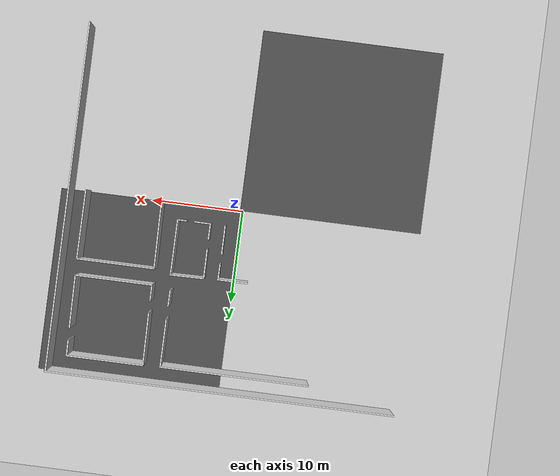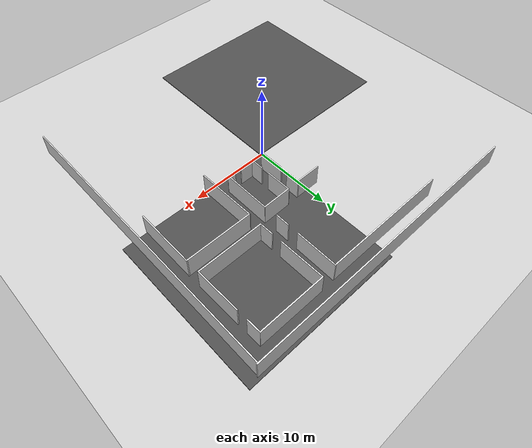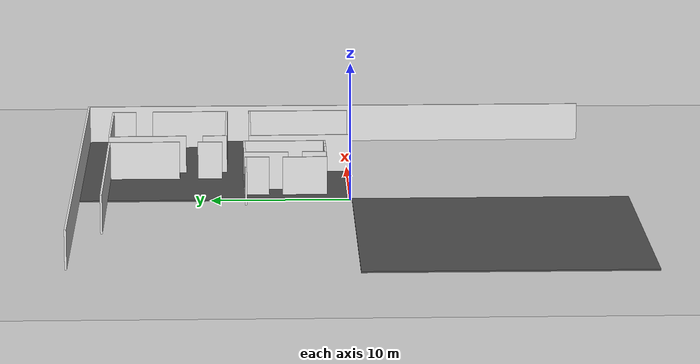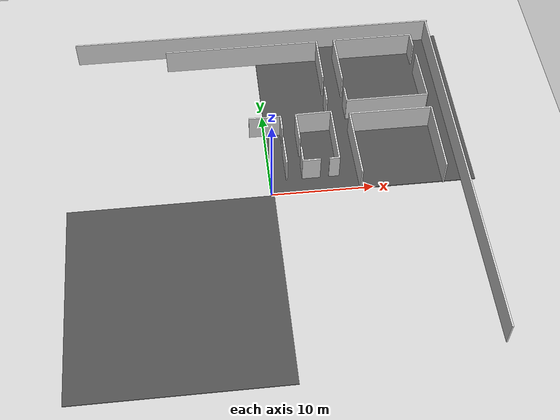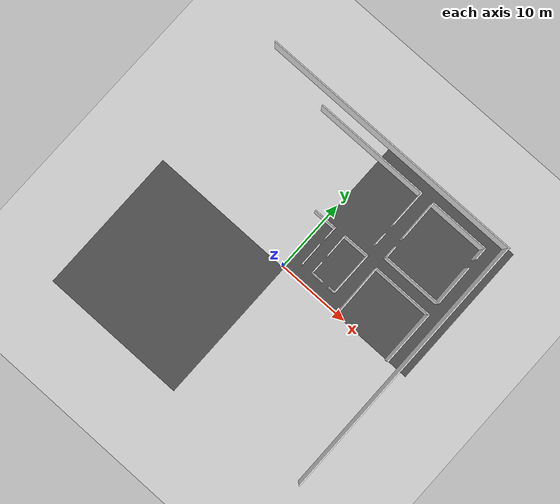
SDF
<sdf version="1.6">
 <world name="default">
  <model name="ground_plane">
   <static>1</static>
   <link name="link">
    <collision name="collision">
     <geometry><plane><normal>0 0 1</normal><size>100 100</size></plane></geometry>
     <surface><friction><ode><mu>100</mu><mu2>50</mu2></ode></friction></surface>
    </collision>
    <visual name="visual">
     <cast_shadows>0</cast_shadows>
     <geometry><plane><normal>0 0 1</normal><size>100 100</size></plane></geometry>
     <material>
      <script><uri>file://media/materials/scripts/gazebo.material</uri><name>Gazebo/Grey</name></script>
     </material>
    </visual>
    <velocity_decay><linear>0</linear><angular>0</angular></velocity_decay>
   </link>
  </model>
  <model name="asphalt_plane">
   <static>1</static>
   <link name="link">
    <collision name="collision"><geometry><box><size>20 20 0.1</size></box></geometry></collision>
    <visual name="visual">
     <cast_shadows>0</cast_shadows>
     <geometry><box><size>20 20 0.1</size></box></geometry>
     <material>
      <script>
       <uri>model://asphalt_plane/materials/scripts</uri>
       <uri>model://asphalt_plane/materials/textures</uri>
       <name>vrc/asphalt</name>
      </script>
     </material>
    </visual>
   </link>
   <pose>-9.73878 -10.1135 0 0 -0 0</pose>
  </model>
  <model name="asphalt_plane_2">
   <static>1</static>
   <link name="link">
    <collision name="collision"><geometry><box><size>20 20 0.1</size></box></geometry></collision>
    <visual name="visual">
     <cast_shadows>0</cast_shadows>
     <geometry><box><size>20 20 0.1</size></box></geometry>
     <material>
      <script>
       <uri>model://asphalt_plane/materials/scripts</uri>
       <uri>model://asphalt_plane/materials/textures</uri>
       <name>vrc/asphalt</name>
      </script>
     </material>
    </visual>
   </link>
   <pose>10.0797 9.93952 0 0 -0 0</pose>
  </model>
  <model name="white_wall_outside">
   <link name="link">
    <inertial>
     <mass>1</mass>
     <inertia>
      <ixx>0.166667</ixx>
      <ixy>0</ixy>
      <ixz>0</ixz>
      <iyy>0.166667</iyy>
      <iyz>0</iyz>
      <izz>0.166667</izz>
     </inertia>
    </inertial>
    <visual name="visual">
     <geometry><box><size>37.6355 0.139088 2.78993</size></box></geometry>
     <material>
      <script><name>Gazebo/White</name><uri>file://media/materials/scripts/gazebo.material</uri></script>
      <shader type="vertex"><normal_map>__default__</normal_map></shader>
      <ambient>1 1 1 1</ambient>
      <diffuse>1 1 1 1</diffuse>
      <specular>0 0 0 1</specular>
      <emissive>0 0 0 1</emissive>
     </material>
    </visual>
    <collision name="collision">
     <geometry><box><size>37.6355 0.139088 2.78993</size></box></geometry>
     <surface>
      <friction>
       <ode><mu>1</mu><mu2>1</mu2><fdir1>0 0 0</fdir1><slip1>0</slip1><slip2>0</slip2></ode>
       <torsional>
        <coefficient>1</coefficient>
        <patch_radius>0</patch_radius>
        <surface_radius>0</surface_radius>
        <use_patch_radius>1</use_patch_radius>
        <ode><slip>0</slip></ode>
       </torsional>
      </friction>
      <bounce><restitution_coefficient>0</restitution_coefficient><threshold>1e+06</threshold></bounce>
      <contact>
       <collide_without_contact>0</collide_without_contact>
       <collide_without_contact_bitmask>1</collide_without_contact_bitmask>
       <collide_bitmask>1</collide_bitmask>
       <ode>
        <soft_cfm>0</soft_cfm>
        <soft_erp>0.2</soft_erp>
        <kp>1e+13</kp>
        <kd>1</kd>
        <max_vel>0.01</max_vel>
        <min_depth>0</min_depth>
       </ode>
       <bullet>
        <split_impulse>1</split_impulse>
        <split_impulse_penetration_threshold>-0.01</split_impulse_penetration_threshold>
        <soft_cfm>0</soft_cfm>
        <soft_erp>0.2</soft_erp>
        <kp>1e+13</kp>
        <kd>1</kd>
       </bullet>
      </contact>
     </surface>
    </collision>
   </link>
   <static>1</static>
   <pose>0.019671 19.5408 1.44001 -1e-06 4e-06 -1.6e-05</pose>
  </model>
  <model name="white_wall_outside_clone_0">
   <link name="link">
    <inertial>
     <mass>1</mass>
     <inertia>
      <ixx>0.166667</ixx>
      <ixy>0</ixy>
      <ixz>0</ixz>
      <iyy>0.166667</iyy>
      <iyz>0</iyz>
      <izz>0.166667</izz>
     </inertia>
    </inertial>
    <visual name="visual">
     <geometry><box><size>37.6355 0.139088 2.78993</size></box></geometry>
     <material>
      <script><name>Gazebo/White</name><uri>file://media/materials/scripts/gazebo.material</uri></script>
      <shader type="vertex"><normal_map>__default__</normal_map></shader>
      <ambient>1 1 1 1</ambient>
      <diffuse>1 1 1 1</diffuse>
      <specular>0 0 0 1</specular>
      <emissive>0 0 0 1</emissive>
     </material>
    </visual>
    <collision name="collision">
     <geometry><box><size>37.6355 0.139088 2.78993</size></box></geometry>
     <surface>
      <friction>
       <ode><mu>1</mu><mu2>1</mu2><fdir1>0 0 0</fdir1><slip1>0</slip1><slip2>0</slip2></ode>
       <torsional>
        <coefficient>1</coefficient>
        <patch_radius>0</patch_radius>
        <surface_radius>0</surface_radius>
        <use_patch_radius>1</use_patch_radius>
        <ode><slip>0</slip></ode>
       </torsional>
      </friction>
      <bounce><restitution_coefficient>0</restitution_coefficient><threshold>1e+06</threshold></bounce>
      <contact>
       <collide_without_contact>0</collide_without_contact>
       <collide_without_contact_bitmask>1</collide_without_contact_bitmask>
       <collide_bitmask>1</collide_bitmask>
       <ode>
        <soft_cfm>0</soft_cfm>
        <soft_erp>0.2</soft_erp>
        <kp>1e+13</kp>
        <kd>1</kd>
        <max_vel>0.01</max_vel>
        <min_depth>0</min_depth>
       </ode>
       <bullet>
        <split_impulse>1</split_impulse>
        <split_impulse_penetration_threshold>-0.01</split_impulse_penetration_threshold>
        <soft_cfm>0</soft_cfm>
        <soft_erp>0.2</soft_erp>
        <kp>1e+13</kp>
        <kd>1</kd>
       </bullet>
      </contact>
     </surface>
    </collision>
   </link>
   <static>1</static>
   <pose>18.7064 0.787366 1.43994 4e-06 1e-06 1.57249</pose>
  </model>
  <model name="white_wall1_clone">
   <link name="link">
    <inertial>
     <mass>1</mass>
     <inertia>
      <ixx>0.166667</ixx>
      <ixy>0</ixy>
      <ixz>0</ixz>
      <iyy>0.166667</iyy>
      <iyz>0</iyz>
      <izz>0.166667</izz>
     </inertia>
    </inertial>
    <visual name="visual">
     <geometry><box><size>7.516 0.139088 2.78993</size></box></geometry>
     <material>
      <script><name>Gazebo/White</name><uri>file://media/materials/scripts/gazebo.material</uri></script>
      <shader type="vertex"><normal_map>__default__</normal_map></shader>
      <ambient>1 1 1 1</ambient>
      <diffuse>1 1 1 1</diffuse>
      <specular>0 0 0 1</specular>
      <emissive>0 0 0 1</emissive>
     </material>
    </visual>
    <collision name="collision">
     <geometry><box><size>7.516 0.139088 2.78993</size></box></geometry>
     <surface>
      <friction>
       <ode><mu>1</mu><mu2>1</mu2><fdir1>0 0 0</fdir1><slip1>0</slip1><slip2>0</slip2></ode>
       <torsional>
        <coefficient>1</coefficient>
        <patch_radius>0</patch_radius>
        <surface_radius>0</surface_radius>
        <use_patch_radius>1</use_patch_radius>
        <ode><slip>0</slip></ode>
       </torsional>
      </friction>
      <bounce><restitution_coefficient>0</restitution_coefficient><threshold>1e+06</threshold></bounce>
      <contact>
       <collide_without_contact>0</collide_without_contact>
       <collide_without_contact_bitmask>1</collide_without_contact_bitmask>
       <collide_bitmask>1</collide_bitmask>
       <ode>
        <soft_cfm>0</soft_cfm>
        <soft_erp>0.2</soft_erp>
        <kp>1e+13</kp>
        <kd>1</kd>
        <max_vel>0.01</max_vel>
        <min_depth>0</min_depth>
       </ode>
       <bullet>
        <split_impulse>1</split_impulse>
        <split_impulse_penetration_threshold>-0.01</split_impulse_penetration_threshold>
        <soft_cfm>0</soft_cfm>
        <soft_erp>0.2</soft_erp>
        <kp>1e+13</kp>
        <kd>1</kd>
       </bullet>
      </contact>
     </surface>
    </collision>
   </link>
   <static>1</static>
   <pose>16.8632 3.54144 1.43994 -4e-06 -1e-06 -1.57184</pose>
  </model>
  <model name="white_wall8_clone_clone">
   <link name="link">
    <inertial>
     <mass>1</mass>
     <inertia>
      <ixx>0.166667</ixx>
      <ixy>0</ixy>
      <ixz>0</ixz>
      <iyy>0.166667</iyy>
      <iyz>0</iyz>
      <izz>0.166667</izz>
     </inertia>
    </inertial>
    <visual name="visual">
     <geometry><box><size>8.30741 0.139088 2.78993</size></box></geometry>
     <material>
      <script><name>Gazebo/White</name><uri>file://media/materials/scripts/gazebo.material</uri></script>
      <shader type="vertex"><normal_map>__default__</normal_map></shader>
      <ambient>1 1 1 1</ambient>
      <diffuse>1 1 1 1</diffuse>
      <specular>0 0 0 1</specular>
      <emissive>0 0 0 1</emissive>
     </material>
    </visual>
    <collision name="collision">
     <geometry><box><size>8.30741 0.139088 2.78993</size></box></geometry>
     <surface>
      <friction>
       <ode><mu>1</mu><mu2>1</mu2><fdir1>0 0 0</fdir1><slip1>0</slip1><slip2>0</slip2></ode>
       <torsional>
        <coefficient>1</coefficient>
        <patch_radius>0</patch_radius>
        <surface_radius>0</surface_radius>
        <use_patch_radius>1</use_patch_radius>
        <ode><slip>0</slip></ode>
       </torsional>
      </friction>
      <bounce><restitution_coefficient>0</restitution_coefficient><threshold>1e+06</threshold></bounce>
      <contact>
       <collide_without_contact>0</collide_without_contact>
       <collide_without_contact_bitmask>1</collide_without_contact_bitmask>
       <collide_bitmask>1</collide_bitmask>
       <ode>
        <soft_cfm>0</soft_cfm>
        <soft_erp>0.2</soft_erp>
        <kp>1e+13</kp>
        <kd>1</kd>
        <max_vel>0.01</max_vel>
        <min_depth>0</min_depth>
       </ode>
       <bullet>
        <split_impulse>1</split_impulse>
        <split_impulse_penetration_threshold>-0.01</split_impulse_penetration_threshold>
        <soft_cfm>0</soft_cfm>
        <soft_erp>0.2</soft_erp>
        <kp>1e+13</kp>
        <kd>1</kd>
       </bullet>
      </contact>
     </surface>
    </collision>
   </link>
   <static>1</static>
   <pose>12.7274 7.22395 1.43997 -1e-06 4e-06 -1.6e-05</pose>
  </model>
  <model name="white_wall1_clone_clone">
   <link name="link">
    <inertial>
     <mass>1</mass>
     <inertia>
      <ixx>0.166667</ixx>
      <ixy>0</ixy>
      <ixz>0</ixz>
      <iyy>0.166667</iyy>
      <iyz>0</iyz>
      <izz>0.166667</izz>
     </inertia>
    </inertial>
    <visual name="visual">
     <geometry><box><size>7.516 0.139088 2.78993</size></box></geometry>
     <material>
      <script><name>Gazebo/White</name><uri>file://media/materials/scripts/gazebo.material</uri></script>
      <shader type="vertex"><normal_map>__default__</normal_map></shader>
      <ambient>1 1 1 1</ambient>
      <diffuse>1 1 1 1</diffuse>
      <specular>0 0 0 1</specular>
      <emissive>0 0 0 1</emissive>
     </material>
    </visual>
    <collision name="collision">
     <geometry><box><size>7.516 0.139088 2.78993</size></box></geometry>
     <surface>
      <friction>
       <ode><mu>1</mu><mu2>1</mu2><fdir1>0 0 0</fdir1><slip1>0</slip1><slip2>0</slip2></ode>
       <torsional>
        <coefficient>1</coefficient>
        <patch_radius>0</patch_radius>
        <surface_radius>0</surface_radius>
        <use_patch_radius>1</use_patch_radius>
        <ode><slip>0</slip></ode>
       </torsional>
      </friction>
      <bounce><restitution_coefficient>0</restitution_coefficient><threshold>1e+06</threshold></bounce>
      <contact>
       <collide_without_contact>0</collide_without_contact>
       <collide_without_contact_bitmask>1</collide_without_contact_bitmask>
       <collide_bitmask>1</collide_bitmask>
       <ode>
        <soft_cfm>0</soft_cfm>
        <soft_erp>0.2</soft_erp>
        <kp>1e+13</kp>
        <kd>1</kd>
        <max_vel>0.01</max_vel>
        <min_depth>0</min_depth>
       </ode>
       <bullet>
        <split_impulse>1</split_impulse>
        <split_impulse_penetration_threshold>-0.01</split_impulse_penetration_threshold>
        <soft_cfm>0</soft_cfm>
        <soft_erp>0.2</soft_erp>
        <kp>1e+13</kp>
        <kd>1</kd>
       </bullet>
      </contact>
     </surface>
    </collision>
   </link>
   <static>1</static>
   <pose>8.6384 3.53143 1.43994 -4e-06 -1e-06 -1.55395</pose>
  </model>
  <model name="white_wall3_clone_clone_1_clone_0_clone">
   <link name="link">
    <inertial>
     <mass>1</mass>
     <inertia>
      <ixx>0.166667</ixx>
      <ixy>0</ixy>
      <ixz>0</ixz>
      <iyy>0.166667</iyy>
      <iyz>0</iyz>
      <izz>0.166667</izz>
     </inertia>
    </inertial>
    <visual name="visual">
     <geometry><box><size>1.77743 0.139088 2.78993</size></box></geometry>
     <material>
      <script><name>Gazebo/White</name><uri>file://media/materials/scripts/gazebo.material</uri></script>
      <shader type="vertex"><normal_map>__default__</normal_map></shader>
      <ambient>1 1 1 1</ambient>
      <diffuse>1 1 1 1</diffuse>
      <specular>0 0 0 1</specular>
      <emissive>0 0 0 1</emissive>
     </material>
    </visual>
    <collision name="collision">
     <geometry><box><size>1.77743 0.139088 2.78993</size></box></geometry>
     <surface>
      <friction>
       <ode><mu>1</mu><mu2>1</mu2><fdir1>0 0 0</fdir1><slip1>0</slip1><slip2>0</slip2></ode>
       <torsional>
        <coefficient>1</coefficient>
        <patch_radius>0</patch_radius>
        <surface_radius>0</surface_radius>
        <use_patch_radius>1</use_patch_radius>
        <ode><slip>0</slip></ode>
       </torsional>
      </friction>
      <bounce><restitution_coefficient>0</restitution_coefficient><threshold>1e+06</threshold></bounce>
      <contact>
       <collide_without_contact>0</collide_without_contact>
       <collide_without_contact_bitmask>1</collide_without_contact_bitmask>
       <collide_bitmask>1</collide_bitmask>
       <ode>
        <soft_cfm>0</soft_cfm>
        <soft_erp>0.2</soft_erp>
        <kp>1e+13</kp>
        <kd>1</kd>
        <max_vel>0.01</max_vel>
        <min_depth>0</min_depth>
       </ode>
       <bullet>
        <split_impulse>1</split_impulse>
        <split_impulse_penetration_threshold>-0.01</split_impulse_penetration_threshold>
        <soft_cfm>0</soft_cfm>
        <soft_erp>0.2</soft_erp>
        <kp>1e+13</kp>
        <kd>1</kd>
       </bullet>
      </contact>
     </surface>
    </collision>
   </link>
   <static>1</static>
   <pose>16.6488 16.7754 1.43995 -4e-06 -1e-06 -1.5551</pose>
  </model>
  <model name="white_wall14">
   <link name="link">
    <inertial>
     <mass>1</mass>
     <inertia>
      <ixx>0.166667</ixx>
      <ixy>0</ixy>
      <ixz>0</ixz>
      <iyy>0.166667</iyy>
      <iyz>0</iyz>
      <izz>0.166667</izz>
     </inertia>
    </inertial>
    <visual name="visual">
     <geometry><box><size>5.71848 0.139088 2.78993</size></box></geometry>
     <material>
      <script><name>Gazebo/White</name><uri>file://media/materials/scripts/gazebo.material</uri></script>
      <shader type="vertex"><normal_map>__default__</normal_map></shader>
      <ambient>1 1 1 1</ambient>
      <diffuse>1 1 1 1</diffuse>
      <specular>0 0 0 1</specular>
      <emissive>0 0 0 1</emissive>
     </material>
    </visual>
    <collision name="collision">
     <geometry><box><size>5.71848 0.139088 2.78993</size></box></geometry>
     <surface>
      <friction>
       <ode><mu>1</mu><mu2>1</mu2><fdir1>0 0 0</fdir1><slip1>0</slip1><slip2>0</slip2></ode>
       <torsional>
        <coefficient>1</coefficient>
        <patch_radius>0</patch_radius>
        <surface_radius>0</surface_radius>
        <use_patch_radius>1</use_patch_radius>
        <ode><slip>0</slip></ode>
       </torsional>
      </friction>
      <bounce><restitution_coefficient>0</restitution_coefficient><threshold>1e+06</threshold></bounce>
      <contact>
       <collide_without_contact>0</collide_without_contact>
       <collide_without_contact_bitmask>1</collide_without_contact_bitmask>
       <collide_bitmask>1</collide_bitmask>
       <ode>
        <soft_cfm>0</soft_cfm>
        <soft_erp>0.2</soft_erp>
        <kp>1e+13</kp>
        <kd>1</kd>
        <max_vel>0.01</max_vel>
        <min_depth>0</min_depth>
       </ode>
       <bullet>
        <split_impulse>1</split_impulse>
        <split_impulse_penetration_threshold>-0.01</split_impulse_penetration_threshold>
        <soft_cfm>0</soft_cfm>
        <soft_erp>0.2</soft_erp>
        <kp>1e+13</kp>
        <kd>1</kd>
       </bullet>
      </contact>
     </surface>
    </collision>
   </link>
   <static>1</static>
   <pose>16.7586 11.7645 1.43994 -4e-06 -1e-06 -1.55521</pose>
  </model>
  <model name="white_wall8_clone_clone_clone">
   <link name="link">
    <inertial>
     <mass>1</mass>
     <inertia>
      <ixx>0.166667</ixx>
      <ixy>0</ixy>
      <ixz>0</ixz>
      <iyy>0.166667</iyy>
      <iyz>0</iyz>
      <izz>0.166667</izz>
     </inertia>
    </inertial>
    <visual name="visual">
     <geometry><box><size>8.30741 0.139088 2.78993</size></box></geometry>
     <material>
      <script><name>Gazebo/White</name><uri>file://media/materials/scripts/gazebo.material</uri></script>
      <shader type="vertex"><normal_map>__default__</normal_map></shader>
      <ambient>1 1 1 1</ambient>
      <diffuse>1 1 1 1</diffuse>
      <specular>0 0 0 1</specular>
      <emissive>0 0 0 1</emissive>
     </material>
    </visual>
    <collision name="collision">
     <geometry><box><size>8.30741 0.139088 2.78993</size></box></geometry>
     <surface>
      <friction>
       <ode><mu>1</mu><mu2>1</mu2><fdir1>0 0 0</fdir1><slip1>0</slip1><slip2>0</slip2></ode>
       <torsional>
        <coefficient>1</coefficient>
        <patch_radius>0</patch_radius>
        <surface_radius>0</surface_radius>
        <use_patch_radius>1</use_patch_radius>
        <ode><slip>0</slip></ode>
       </torsional>
      </friction>
      <bounce><restitution_coefficient>0</restitution_coefficient><threshold>1e+06</threshold></bounce>
      <contact>
       <collide_without_contact>0</collide_without_contact>
       <collide_without_contact_bitmask>1</collide_without_contact_bitmask>
       <collide_bitmask>1</collide_bitmask>
       <ode>
        <soft_cfm>0</soft_cfm>
        <soft_erp>0.2</soft_erp>
        <kp>1e+13</kp>
        <kd>1</kd>
        <max_vel>0.01</max_vel>
        <min_depth>0</min_depth>
       </ode>
       <bullet>
        <split_impulse>1</split_impulse>
        <split_impulse_penetration_threshold>-0.01</split_impulse_penetration_threshold>
        <soft_cfm>0</soft_cfm>
        <soft_erp>0.2</soft_erp>
        <kp>1e+13</kp>
        <kd>1</kd>
       </bullet>
      </contact>
     </surface>
    </collision>
   </link>
   <static>1</static>
   <pose>12.6764 8.97226 1.43997 -1e-06 4e-06 -1.6e-05</pose>
  </model>
  <model name="white_wall8_clone_clone_clone_0">
   <link name="link">
    <inertial>
     <mass>1</mass>
     <inertia>
      <ixx>0.166667</ixx>
      <ixy>0</ixy>
      <ixz>0</ixz>
      <iyy>0.166667</iyy>
      <iyz>0</iyz>
      <izz>0.166667</izz>
     </inertia>
    </inertial>
    <visual name="visual">
     <geometry><box><size>8.30741 0.139088 2.78993</size></box></geometry>
     <material>
      <script><name>Gazebo/White</name><uri>file://media/materials/scripts/gazebo.material</uri></script>
      <shader type="vertex"><normal_map>__default__</normal_map></shader>
      <ambient>1 1 1 1</ambient>
      <diffuse>1 1 1 1</diffuse>
      <specular>0 0 0 1</specular>
      <emissive>0 0 0 1</emissive>
     </material>
    </visual>
    <collision name="collision">
     <geometry><box><size>8.30741 0.139088 2.78993</size></box></geometry>
     <surface>
      <friction>
       <ode><mu>1</mu><mu2>1</mu2><fdir1>0 0 0</fdir1><slip1>0</slip1><slip2>0</slip2></ode>
       <torsional>
        <coefficient>1</coefficient>
        <patch_radius>0</patch_radius>
        <surface_radius>0</surface_radius>
        <use_patch_radius>1</use_patch_radius>
        <ode><slip>0</slip></ode>
       </torsional>
      </friction>
      <bounce><restitution_coefficient>0</restitution_coefficient><threshold>1e+06</threshold></bounce>
      <contact>
       <collide_without_contact>0</collide_without_contact>
       <collide_without_contact_bitmask>1</collide_without_contact_bitmask>
       <collide_bitmask>1</collide_bitmask>
       <ode>
        <soft_cfm>0</soft_cfm>
        <soft_erp>0.2</soft_erp>
        <kp>1e+13</kp>
        <kd>1</kd>
        <max_vel>0.01</max_vel>
        <min_depth>0</min_depth>
       </ode>
       <bullet>
        <split_impulse>1</split_impulse>
        <split_impulse_penetration_threshold>-0.01</split_impulse_penetration_threshold>
        <soft_cfm>0</soft_cfm>
        <soft_erp>0.2</soft_erp>
        <kp>1e+13</kp>
        <kd>1</kd>
       </bullet>
      </contact>
     </surface>
    </collision>
   </link>
   <static>1</static>
   <pose>12.5374 17.6 1.43997 -1e-06 4e-06 -1.6e-05</pose>
  </model>
  <model name="white_wall14_clone">
   <link name="link">
    <inertial>
     <mass>1</mass>
     <inertia>
      <ixx>0.166667</ixx>
      <ixy>0</ixy>
      <ixz>0</ixz>
      <iyy>0.166667</iyy>
      <iyz>0</iyz>
      <izz>0.166667</izz>
     </inertia>
    </inertial>
    <visual name="visual">
     <geometry><box><size>5.71848 0.139088 2.78993</size></box></geometry>
     <material>
      <script><name>Gazebo/White</name><uri>file://media/materials/scripts/gazebo.material</uri></script>
      <shader type="vertex"><normal_map>__default__</normal_map></shader>
      <ambient>1 1 1 1</ambient>
      <diffuse>1 1 1 1</diffuse>
      <specular>0 0 0 1</specular>
      <emissive>0 0 0 1</emissive>
     </material>
    </visual>
    <collision name="collision">
     <geometry><box><size>5.71848 0.139088 2.78993</size></box></geometry>
     <surface>
      <friction>
       <ode><mu>1</mu><mu2>1</mu2><fdir1>0 0 0</fdir1><slip1>0</slip1><slip2>0</slip2></ode>
       <torsional>
        <coefficient>1</coefficient>
        <patch_radius>0</patch_radius>
        <surface_radius>0</surface_radius>
        <use_patch_radius>1</use_patch_radius>
        <ode><slip>0</slip></ode>
       </torsional>
      </friction>
      <bounce><restitution_coefficient>0</restitution_coefficient><threshold>1e+06</threshold></bounce>
      <contact>
       <collide_without_contact>0</collide_without_contact>
       <collide_without_contact_bitmask>1</collide_without_contact_bitmask>
       <collide_bitmask>1</collide_bitmask>
       <ode>
        <soft_cfm>0</soft_cfm>
        <soft_erp>0.2</soft_erp>
        <kp>1e+13</kp>
        <kd>1</kd>
        <max_vel>0.01</max_vel>
        <min_depth>0</min_depth>
       </ode>
       <bullet>
        <split_impulse>1</split_impulse>
        <split_impulse_penetration_threshold>-0.01</split_impulse_penetration_threshold>
        <soft_cfm>0</soft_cfm>
        <soft_erp>0.2</soft_erp>
        <kp>1e+13</kp>
        <kd>1</kd>
       </bullet>
      </contact>
     </surface>
    </collision>
   </link>
   <static>1</static>
   <pose>8.48733 14.7914 1.43994 -4e-06 -1e-06 -1.55521</pose>
  </model>
  <model name="white_wall3_clone_clone_1_clone_0_clone_clone">
   <link name="link">
    <inertial>
     <mass>1</mass>
     <inertia>
      <ixx>0.166667</ixx>
      <ixy>0</ixy>
      <ixz>0</ixz>
      <iyy>0.166667</iyy>
      <iyz>0</iyz>
      <izz>0.166667</izz>
     </inertia>
    </inertial>
    <visual name="visual">
     <geometry><box><size>1.77743 0.139088 2.78993</size></box></geometry>
     <material>
      <script><name>Gazebo/White</name><uri>file://media/materials/scripts/gazebo.material</uri></script>
      <shader type="vertex"><normal_map>__default__</normal_map></shader>
      <ambient>1 1 1 1</ambient>
      <diffuse>1 1 1 1</diffuse>
      <specular>0 0 0 1</specular>
      <emissive>0 0 0 1</emissive>
     </material>
    </visual>
    <collision name="collision">
     <geometry><box><size>1.77743 0.139088 2.78993</size></box></geometry>
     <surface>
      <friction>
       <ode><mu>1</mu><mu2>1</mu2><fdir1>0 0 0</fdir1><slip1>0</slip1><slip2>0</slip2></ode>
       <torsional>
        <coefficient>1</coefficient>
        <patch_radius>0</patch_radius>
        <surface_radius>0</surface_radius>
        <use_patch_radius>1</use_patch_radius>
        <ode><slip>0</slip></ode>
       </torsional>
      </friction>
      <bounce><restitution_coefficient>0</restitution_coefficient><threshold>1e+06</threshold></bounce>
      <contact>
       <collide_without_contact>0</collide_without_contact>
       <collide_without_contact_bitmask>1</collide_without_contact_bitmask>
       <collide_bitmask>1</collide_bitmask>
       <ode>
        <soft_cfm>0</soft_cfm>
        <soft_erp>0.2</soft_erp>
        <kp>1e+13</kp>
        <kd>1</kd>
        <max_vel>0.01</max_vel>
        <min_depth>0</min_depth>
       </ode>
       <bullet>
        <split_impulse>1</split_impulse>
        <split_impulse_penetration_threshold>-0.01</split_impulse_penetration_threshold>
        <soft_cfm>0</soft_cfm>
        <soft_erp>0.2</soft_erp>
        <kp>1e+13</kp>
        <kd>1</kd>
       </bullet>
      </contact>
     </surface>
    </collision>
   </link>
   <static>1</static>
   <pose>8.5689 9.81142 1.43995 -4e-06 -1e-06 -1.5551</pose>
  </model>
  <model name="white_wall17_clone_clone">
   <link name="link">
    <inertial>
     <mass>1</mass>
     <inertia>
      <ixx>0.166667</ixx>
      <ixy>0</ixy>
      <ixz>0</ixz>
      <iyy>0.166667</iyy>
      <iyz>0</iyz>
      <izz>0.166667</izz>
     </inertia>
    </inertial>
    <visual name="visual">
     <geometry><box><size>16.0161 0.139088 2.78993</size></box></geometry>
     <material>
      <script><name>Gazebo/White</name><uri>file://media/materials/scripts/gazebo.material</uri></script>
      <shader type="vertex"><normal_map>__default__</normal_map></shader>
      <ambient>1 1 1 1</ambient>
      <diffuse>1 1 1 1</diffuse>
      <specular>0 0 0 1</specular>
      <emissive>0 0 0 1</emissive>
     </material>
    </visual>
    <collision name="collision">
     <geometry><box><size>16.0161 0.139088 2.78993</size></box></geometry>
     <surface>
      <friction>
       <ode><mu>1</mu><mu2>1</mu2><fdir1>0 0 0</fdir1><slip1>0</slip1><slip2>0</slip2></ode>
       <torsional>
        <coefficient>1</coefficient>
        <patch_radius>0</patch_radius>
        <surface_radius>0</surface_radius>
        <use_patch_radius>1</use_patch_radius>
        <ode><slip>0</slip></ode>
       </torsional>
      </friction>
      <bounce><restitution_coefficient>0</restitution_coefficient><threshold>1e+06</threshold></bounce>
      <contact>
       <collide_without_contact>0</collide_without_contact>
       <collide_without_contact_bitmask>1</collide_without_contact_bitmask>
       <collide_bitmask>1</collide_bitmask>
       <ode>
        <soft_cfm>0</soft_cfm>
        <soft_erp>0.2</soft_erp>
        <kp>1e+13</kp>
        <kd>1</kd>
        <max_vel>0.01</max_vel>
        <min_depth>0</min_depth>
       </ode>
       <bullet>
        <split_impulse>1</split_impulse>
        <split_impulse_penetration_threshold>-0.01</split_impulse_penetration_threshold>
        <soft_cfm>0</soft_cfm>
        <soft_erp>0.2</soft_erp>
        <kp>1e+13</kp>
        <kd>1</kd>
       </bullet>
      </contact>
     </surface>
    </collision>
   </link>
   <static>1</static>
   <pose>-1.34784 17.535 1.43995 -1e-06 4e-06 -1.6e-05</pose>
  </model>
  <model name="white_wall19_clone_0">
   <link name="link">
    <inertial>
     <mass>1</mass>
     <inertia>
      <ixx>0.166667</ixx>
      <ixy>0</ixy>
      <ixz>0</ixz>
      <iyy>0.166667</iyy>
      <iyz>0</iyz>
      <izz>0.166667</izz>
     </inertia>
    </inertial>
    <visual name="visual">
     <geometry><box><size>5.22248 0.139088 2.78993</size></box></geometry>
     <material>
      <script><name>Gazebo/White</name><uri>file://media/materials/scripts/gazebo.material</uri></script>
      <shader type="vertex"><normal_map>__default__</normal_map></shader>
      <ambient>1 1 1 1</ambient>
      <diffuse>1 1 1 1</diffuse>
      <specular>0 0 0 1</specular>
      <emissive>0 0 0 1</emissive>
     </material>
    </visual>
    <collision name="collision">
     <geometry><box><size>5.22248 0.139088 2.78993</size></box></geometry>
     <surface>
      <friction>
       <ode><mu>1</mu><mu2>1</mu2><fdir1>0 0 0</fdir1><slip1>0</slip1><slip2>0</slip2></ode>
       <torsional>
        <coefficient>1</coefficient>
        <patch_radius>0</patch_radius>
        <surface_radius>0</surface_radius>
        <use_patch_radius>1</use_patch_radius>
        <ode><slip>0</slip></ode>
       </torsional>
      </friction>
      <bounce><restitution_coefficient>0</restitution_coefficient><threshold>1e+06</threshold></bounce>
      <contact>
       <collide_without_contact>0</collide_without_contact>
       <collide_without_contact_bitmask>1</collide_without_contact_bitmask>
       <collide_bitmask>1</collide_bitmask>
       <ode>
        <soft_cfm>0</soft_cfm>
        <soft_erp>0.2</soft_erp>
        <kp>1e+13</kp>
        <kd>1</kd>
        <max_vel>0.01</max_vel>
        <min_depth>0</min_depth>
       </ode>
       <bullet>
        <split_impulse>1</split_impulse>
        <split_impulse_penetration_threshold>-0.01</split_impulse_penetration_threshold>
        <soft_cfm>0</soft_cfm>
        <soft_erp>0.2</soft_erp>
        <kp>1e+13</kp>
        <kd>1</kd>
       </bullet>
      </contact>
     </surface>
    </collision>
   </link>
   <static>1</static>
   <pose>6.59059 14.9958 1.43998 4e-06 1e-06 1.56978</pose>
  </model>
  <model name="white_wall3_clone_clone_2_clone_clone">
   <link name="link">
    <inertial>
     <mass>1</mass>
     <inertia>
      <ixx>0.166667</ixx>
      <ixy>0</ixy>
      <ixz>0</ixz>
      <iyy>0.166667</iyy>
      <iyz>0</iyz>
      <izz>0.166667</izz>
     </inertia>
    </inertial>
    <visual name="visual">
     <geometry><box><size>1.77743 0.139088 2.78993</size></box></geometry>
     <material>
      <script><name>Gazebo/White</name><uri>file://media/materials/scripts/gazebo.material</uri></script>
      <shader type="vertex"><normal_map>__default__</normal_map></shader>
      <ambient>1 1 1 1</ambient>
      <diffuse>1 1 1 1</diffuse>
      <specular>0 0 0 1</specular>
      <emissive>0 0 0 1</emissive>
     </material>
    </visual>
    <collision name="collision">
     <geometry><box><size>1.77743 0.139088 2.78993</size></box></geometry>
     <surface>
      <friction>
       <ode><mu>1</mu><mu2>1</mu2><fdir1>0 0 0</fdir1><slip1>0</slip1><slip2>0</slip2></ode>
       <torsional>
        <coefficient>1</coefficient>
        <patch_radius>0</patch_radius>
        <surface_radius>0</surface_radius>
        <use_patch_radius>1</use_patch_radius>
        <ode><slip>0</slip></ode>
       </torsional>
      </friction>
      <bounce><restitution_coefficient>0</restitution_coefficient><threshold>1e+06</threshold></bounce>
      <contact>
       <collide_without_contact>0</collide_without_contact>
       <collide_without_contact_bitmask>1</collide_without_contact_bitmask>
       <collide_bitmask>1</collide_bitmask>
       <ode>
        <soft_cfm>0</soft_cfm>
        <soft_erp>0.2</soft_erp>
        <kp>1e+13</kp>
        <kd>1</kd>
        <max_vel>0.01</max_vel>
        <min_depth>0</min_depth>
       </ode>
       <bullet>
        <split_impulse>1</split_impulse>
        <split_impulse_penetration_threshold>-0.01</split_impulse_penetration_threshold>
        <soft_cfm>0</soft_cfm>
        <soft_erp>0.2</soft_erp>
        <kp>1e+13</kp>
        <kd>1</kd>
       </bullet>
      </contact>
     </surface>
    </collision>
   </link>
   <static>1</static>
   <pose>6.5769 10.1521 1.43995 4e-06 1e-06 1.56402</pose>
  </model>
  <model name="white_wall2_clone_clone_clone_clone_clone_clone_clone">
   <link name="link">
    <inertial>
     <mass>1</mass>
     <inertia>
      <ixx>0.166667</ixx>
      <ixy>0</ixy>
      <ixz>0</ixz>
      <iyy>0.166667</iyy>
      <iyz>0</iyz>
      <izz>0.166667</izz>
     </inertia>
    </inertial>
    <visual name="visual">
     <geometry><box><size>3.22688 0.139088 2.78993</size></box></geometry>
     <material>
      <script><name>Gazebo/White</name><uri>file://media/materials/scripts/gazebo.material</uri></script>
      <shader type="vertex"><normal_map>__default__</normal_map></shader>
      <ambient>1 1 1 1</ambient>
      <diffuse>1 1 1 1</diffuse>
      <specular>0 0 0 1</specular>
      <emissive>0 0 0 1</emissive>
     </material>
    </visual>
    <collision name="collision">
     <geometry><box><size>3.22688 0.139088 2.78993</size></box></geometry>
     <surface>
      <friction>
       <ode><mu>1</mu><mu2>1</mu2><fdir1>0 0 0</fdir1><slip1>0</slip1><slip2>0</slip2></ode>
       <torsional>
        <coefficient>1</coefficient>
        <patch_radius>0</patch_radius>
        <surface_radius>0</surface_radius>
        <use_patch_radius>1</use_patch_radius>
        <ode><slip>0</slip></ode>
       </torsional>
      </friction>
      <bounce><restitution_coefficient>0</restitution_coefficient><threshold>1e+06</threshold></bounce>
      <contact>
       <collide_without_contact>0</collide_without_contact>
       <collide_without_contact_bitmask>1</collide_without_contact_bitmask>
       <collide_bitmask>1</collide_bitmask>
       <ode>
        <soft_cfm>0</soft_cfm>
        <soft_erp>0.2</soft_erp>
        <kp>1e+13</kp>
        <kd>1</kd>
        <max_vel>0.01</max_vel>
        <min_depth>0</min_depth>
       </ode>
       <bullet>
        <split_impulse>1</split_impulse>
        <split_impulse_penetration_threshold>-0.01</split_impulse_penetration_threshold>
        <soft_cfm>0</soft_cfm>
        <soft_erp>0.2</soft_erp>
        <kp>1e+13</kp>
        <kd>1</kd>
       </bullet>
      </contact>
     </surface>
    </collision>
   </link>
   <static>1</static>
   <pose>0.098009 7.51806 1.43995 -1e-06 4e-06 0.004652</pose>
  </model>
  <model name="white_wall3_clone_clone_2_clone_clone_clone">
   <link name="link">
    <inertial>
     <mass>1</mass>
     <inertia>
      <ixx>0.166667</ixx>
      <ixy>0</ixy>
      <ixz>0</ixz>
      <iyy>0.166667</iyy>
      <iyz>0</iyz>
      <izz>0.166667</izz>
     </inertia>
    </inertial>
    <visual name="visual">
     <geometry><box><size>1.77743 0.139088 2.78993</size></box></geometry>
     <material>
      <script><name>Gazebo/White</name><uri>file://media/materials/scripts/gazebo.material</uri></script>
      <shader type="vertex"><normal_map>__default__</normal_map></shader>
      <ambient>1 1 1 1</ambient>
      <diffuse>1 1 1 1</diffuse>
      <specular>0 0 0 1</specular>
      <emissive>0 0 0 1</emissive>
     </material>
    </visual>
    <collision name="collision">
     <geometry><box><size>1.77743 0.139088 2.78993</size></box></geometry>
     <surface>
      <friction>
       <ode><mu>1</mu><mu2>1</mu2><fdir1>0 0 0</fdir1><slip1>0</slip1><slip2>0</slip2></ode>
       <torsional>
        <coefficient>1</coefficient>
        <patch_radius>0</patch_radius>
        <surface_radius>0</surface_radius>
        <use_patch_radius>1</use_patch_radius>
        <ode><slip>0</slip></ode>
       </torsional>
      </friction>
      <bounce><restitution_coefficient>0</restitution_coefficient><threshold>1e+06</threshold></bounce>
      <contact>
       <collide_without_contact>0</collide_without_contact>
       <collide_without_contact_bitmask>1</collide_without_contact_bitmask>
       <collide_bitmask>1</collide_bitmask>
       <ode>
        <soft_cfm>0</soft_cfm>
        <soft_erp>0.2</soft_erp>
        <kp>1e+13</kp>
        <kd>1</kd>
        <max_vel>0.01</max_vel>
        <min_depth>0</min_depth>
       </ode>
       <bullet>
        <split_impulse>1</split_impulse>
        <split_impulse_penetration_threshold>-0.01</split_impulse_penetration_threshold>
        <soft_cfm>0</soft_cfm>
        <soft_erp>0.2</soft_erp>
        <kp>1e+13</kp>
        <kd>1</kd>
       </bullet>
      </contact>
     </surface>
    </collision>
   </link>
   <static>1</static>
   <pose>1.65799 6.7128 1.43995 4e-06 1e-06 1.56402</pose>
  </model>
  <model name="white_wall2_clone_clone_clone_clone_0">
   <link name="link">
    <inertial>
     <mass>1</mass>
     <inertia>
      <ixx>0.166667</ixx>
      <ixy>0</ixy>
      <ixz>0</ixz>
      <iyy>0.166667</iyy>
      <iyz>0</iyz>
      <izz>0.166667</izz>
     </inertia>
    </inertial>
    <visual name="visual">
     <geometry><box><size>3.22688 0.139088 2.78993</size></box></geometry>
     <material>
      <script><name>Gazebo/White</name><uri>file://media/materials/scripts/gazebo.material</uri></script>
      <shader type="vertex"><normal_map>__default__</normal_map></shader>
      <ambient>1 1 1 1</ambient>
      <diffuse>1 1 1 1</diffuse>
      <specular>0 0 0 1</specular>
      <emissive>0 0 0 1</emissive>
     </material>
    </visual>
    <collision name="collision">
     <geometry><box><size>3.22688 0.139088 2.78993</size></box></geometry>
     <surface>
      <friction>
       <ode><mu>1</mu><mu2>1</mu2><fdir1>0 0 0</fdir1><slip1>0</slip1><slip2>0</slip2></ode>
       <torsional>
        <coefficient>1</coefficient>
        <patch_radius>0</patch_radius>
        <surface_radius>0</surface_radius>
        <use_patch_radius>1</use_patch_radius>
        <ode><slip>0</slip></ode>
       </torsional>
      </friction>
      <bounce><restitution_coefficient>0</restitution_coefficient><threshold>1e+06</threshold></bounce>
      <contact>
       <collide_without_contact>0</collide_without_contact>
       <collide_without_contact_bitmask>1</collide_without_contact_bitmask>
       <collide_bitmask>1</collide_bitmask>
       <ode>
        <soft_cfm>0</soft_cfm>
        <soft_erp>0.2</soft_erp>
        <kp>1e+13</kp>
        <kd>1</kd>
        <max_vel>0.01</max_vel>
        <min_depth>0</min_depth>
       </ode>
       <bullet>
        <split_impulse>1</split_impulse>
        <split_impulse_penetration_threshold>-0.01</split_impulse_penetration_threshold>
        <soft_cfm>0</soft_cfm>
        <soft_erp>0.2</soft_erp>
        <kp>1e+13</kp>
        <kd>1</kd>
       </bullet>
      </contact>
     </surface>
    </collision>
   </link>
   <static>1</static>
   <pose>1.63251 3.24781 1.43995 4e-06 1e-06 1.57814</pose>
  </model>
  <model name="white_wall3_clone_clone_2_clone_clone_clone_clone">
   <link name="link">
    <inertial>
     <mass>1</mass>
     <inertia>
      <ixx>0.166667</ixx>
      <ixy>0</ixy>
      <ixz>0</ixz>
      <iyy>0.166667</iyy>
      <iyz>0</iyz>
      <izz>0.166667</izz>
     </inertia>
    </inertial>
    <visual name="visual">
     <geometry><box><size>1.77743 0.139088 2.78993</size></box></geometry>
     <material>
      <script><name>Gazebo/White</name><uri>file://media/materials/scripts/gazebo.material</uri></script>
      <shader type="vertex"><normal_map>__default__</normal_map></shader>
      <ambient>1 1 1 1</ambient>
      <diffuse>1 1 1 1</diffuse>
      <specular>0 0 0 1</specular>
      <emissive>0 0 0 1</emissive>
     </material>
    </visual>
    <collision name="collision">
     <geometry><box><size>1.77743 0.139088 2.78993</size></box></geometry>
     <surface>
      <friction>
       <ode><mu>1</mu><mu2>1</mu2><fdir1>0 0 0</fdir1><slip1>0</slip1><slip2>0</slip2></ode>
       <torsional>
        <coefficient>1</coefficient>
        <patch_radius>0</patch_radius>
        <surface_radius>0</surface_radius>
        <use_patch_radius>1</use_patch_radius>
        <ode><slip>0</slip></ode>
       </torsional>
      </friction>
      <bounce><restitution_coefficient>0</restitution_coefficient><threshold>1e+06</threshold></bounce>
      <contact>
       <collide_without_contact>0</collide_without_contact>
       <collide_without_contact_bitmask>1</collide_without_contact_bitmask>
       <collide_bitmask>1</collide_bitmask>
       <ode>
        <soft_cfm>0</soft_cfm>
        <soft_erp>0.2</soft_erp>
        <kp>1e+13</kp>
        <kd>1</kd>
        <max_vel>0.01</max_vel>
        <min_depth>0</min_depth>
       </ode>
       <bullet>
        <split_impulse>1</split_impulse>
        <split_impulse_penetration_threshold>-0.01</split_impulse_penetration_threshold>
        <soft_cfm>0</soft_cfm>
        <soft_erp>0.2</soft_erp>
        <kp>1e+13</kp>
        <kd>1</kd>
       </bullet>
      </contact>
     </surface>
    </collision>
   </link>
   <static>1</static>
   <pose>3.23548 2.54415 1.43995 4e-06 1e-06 1.56402</pose>
  </model>
  <model name="white_wall2_clone_clone_clone_clone_0_clone">
   <link name="link">
    <inertial>
     <mass>1</mass>
     <inertia>
      <ixx>0.166667</ixx>
      <ixy>0</ixy>
      <ixz>0</ixz>
      <iyy>0.166667</iyy>
      <iyz>0</iyz>
      <izz>0.166667</izz>
     </inertia>
    </inertial>
    <visual name="visual">
     <geometry><box><size>3.22688 0.139088 2.78993</size></box></geometry>
     <material>
      <script><name>Gazebo/White</name><uri>file://media/materials/scripts/gazebo.material</uri></script>
      <shader type="vertex"><normal_map>__default__</normal_map></shader>
      <ambient>1 1 1 1</ambient>
      <diffuse>1 1 1 1</diffuse>
      <specular>0 0 0 1</specular>
      <emissive>0 0 0 1</emissive>
     </material>
    </visual>
    <collision name="collision">
     <geometry><box><size>3.22688 0.139088 2.78993</size></box></geometry>
     <surface>
      <friction>
       <ode><mu>1</mu><mu2>1</mu2><fdir1>0 0 0</fdir1><slip1>0</slip1><slip2>0</slip2></ode>
       <torsional>
        <coefficient>1</coefficient>
        <patch_radius>0</patch_radius>
        <surface_radius>0</surface_radius>
        <use_patch_radius>1</use_patch_radius>
        <ode><slip>0</slip></ode>
       </torsional>
      </friction>
      <bounce><restitution_coefficient>0</restitution_coefficient><threshold>1e+06</threshold></bounce>
      <contact>
       <collide_without_contact>0</collide_without_contact>
       <collide_without_contact_bitmask>1</collide_without_contact_bitmask>
       <collide_bitmask>1</collide_bitmask>
       <ode>
        <soft_cfm>0</soft_cfm>
        <soft_erp>0.2</soft_erp>
        <kp>1e+13</kp>
        <kd>1</kd>
        <max_vel>0.01</max_vel>
        <min_depth>0</min_depth>
       </ode>
       <bullet>
        <split_impulse>1</split_impulse>
        <split_impulse_penetration_threshold>-0.01</split_impulse_penetration_threshold>
        <soft_cfm>0</soft_cfm>
        <soft_erp>0.2</soft_erp>
        <kp>1e+13</kp>
        <kd>1</kd>
       </bullet>
      </contact>
     </surface>
    </collision>
   </link>
   <static>1</static>
   <pose>3.21284 6.04856 1.43995 4e-06 1e-06 1.57814</pose>
  </model>
  <model name="white_wall6_clone_clone_clone_0_clone_0">
   <link name="link">
    <inertial>
     <mass>1</mass>
     <inertia>
      <ixx>0.166667</ixx>
      <ixy>0</ixy>
      <ixz>0</ixz>
      <iyy>0.166667</iyy>
      <iyz>0</iyz>
      <izz>0.166667</izz>
     </inertia>
    </inertial>
    <visual name="visual">
     <geometry><box><size>6.01508 0.139088 2.78993</size></box></geometry>
     <material>
      <script><name>Gazebo/White</name><uri>file://media/materials/scripts/gazebo.material</uri></script>
      <shader type="vertex"><normal_map>__default__</normal_map></shader>
      <ambient>1 1 1 1</ambient>
      <diffuse>1 1 1 1</diffuse>
      <specular>0 0 0 1</specular>
      <emissive>0 0 0 1</emissive>
     </material>
    </visual>
    <collision name="collision">
     <geometry><box><size>6.01508 0.139088 2.78993</size></box></geometry>
     <surface>
      <friction>
       <ode><mu>1</mu><mu2>1</mu2><fdir1>0 0 0</fdir1><slip1>0</slip1><slip2>0</slip2></ode>
       <torsional>
        <coefficient>1</coefficient>
        <patch_radius>0</patch_radius>
        <surface_radius>0</surface_radius>
        <use_patch_radius>1</use_patch_radius>
        <ode><slip>0</slip></ode>
       </torsional>
      </friction>
      <bounce><restitution_coefficient>0</restitution_coefficient><threshold>1e+06</threshold></bounce>
      <contact>
       <collide_without_contact>0</collide_without_contact>
       <collide_without_contact_bitmask>1</collide_without_contact_bitmask>
       <collide_bitmask>1</collide_bitmask>
       <ode>
        <soft_cfm>0</soft_cfm>
        <soft_erp>0.2</soft_erp>
        <kp>1e+13</kp>
        <kd>1</kd>
        <max_vel>0.01</max_vel>
        <min_depth>0</min_depth>
       </ode>
       <bullet>
        <split_impulse>1</split_impulse>
        <split_impulse_penetration_threshold>-0.01</split_impulse_penetration_threshold>
        <soft_cfm>0</soft_cfm>
        <soft_erp>0.2</soft_erp>
        <kp>1e+13</kp>
        <kd>1</kd>
       </bullet>
      </contact>
     </surface>
    </collision>
   </link>
   <static>1</static>
   <pose>6.752 4.70157 1.43998 4e-06 1e-06 1.56978</pose>
  </model>
  <model name="white_wall3_clone_clone_1_clone_0_clone_0">
   <link name="link">
    <inertial>
     <mass>1</mass>
     <inertia>
      <ixx>0.166667</ixx>
      <ixy>0</ixy>
      <ixz>0</ixz>
      <iyy>0.166667</iyy>
      <iyz>0</iyz>
      <izz>0.166667</izz>
     </inertia>
    </inertial>
    <visual name="visual">
     <geometry><box><size>1.77743 0.139088 2.78993</size></box></geometry>
     <material>
      <script><name>Gazebo/White</name><uri>file://media/materials/scripts/gazebo.material</uri></script>
      <shader type="vertex"><normal_map>__default__</normal_map></shader>
      <ambient>1 1 1 1</ambient>
      <diffuse>1 1 1 1</diffuse>
      <specular>0 0 0 1</specular>
      <emissive>0 0 0 1</emissive>
     </material>
    </visual>
    <collision name="collision">
     <geometry><box><size>1.77743 0.139088 2.78993</size></box></geometry>
     <surface>
      <friction>
       <ode><mu>1</mu><mu2>1</mu2><fdir1>0 0 0</fdir1><slip1>0</slip1><slip2>0</slip2></ode>
       <torsional>
        <coefficient>1</coefficient>
        <patch_radius>0</patch_radius>
        <surface_radius>0</surface_radius>
        <use_patch_radius>1</use_patch_radius>
        <ode><slip>0</slip></ode>
       </torsional>
      </friction>
      <bounce><restitution_coefficient>0</restitution_coefficient><threshold>1e+06</threshold></bounce>
      <contact>
       <collide_without_contact>0</collide_without_contact>
       <collide_without_contact_bitmask>1</collide_without_contact_bitmask>
       <collide_bitmask>1</collide_bitmask>
       <ode>
        <soft_cfm>0</soft_cfm>
        <soft_erp>0.2</soft_erp>
        <kp>1e+13</kp>
        <kd>1</kd>
        <max_vel>0.01</max_vel>
        <min_depth>0</min_depth>
       </ode>
       <bullet>
        <split_impulse>1</split_impulse>
        <split_impulse_penetration_threshold>-0.01</split_impulse_penetration_threshold>
        <soft_cfm>0</soft_cfm>
        <soft_erp>0.2</soft_erp>
        <kp>1e+13</kp>
        <kd>1</kd>
       </bullet>
      </contact>
     </surface>
    </collision>
   </link>
   <static>1</static>
   <pose>4.05479 1.71884 1.43995 1e-06 -4e-06 3.13818</pose>
  </model>
  <model name="white_wall21">
   <link name="link">
    <inertial>
     <mass>1</mass>
     <inertia>
      <ixx>0.166667</ixx>
      <ixy>0</ixy>
      <ixz>0</ixz>
      <iyy>0.166667</iyy>
      <iyz>0</iyz>
      <izz>0.166667</izz>
     </inertia>
    </inertial>
    <visual name="visual">
     <geometry><box><size>1.02139 0.139088 2.78993</size></box></geometry>
     <material>
      <script><name>Gazebo/White</name><uri>file://media/materials/scripts/gazebo.material</uri></script>
      <shader type="vertex"><normal_map>__default__</normal_map></shader>
      <ambient>1 1 1 1</ambient>
      <diffuse>1 1 1 1</diffuse>
      <specular>0 0 0 1</specular>
      <emissive>0 0 0 1</emissive>
     </material>
    </visual>
    <collision name="collision">
     <geometry><box><size>1.02139 0.139088 2.78993</size></box></geometry>
     <surface>
      <friction>
       <ode><mu>1</mu><mu2>1</mu2><fdir1>0 0 0</fdir1><slip1>0</slip1><slip2>0</slip2></ode>
       <torsional>
        <coefficient>1</coefficient>
        <patch_radius>0</patch_radius>
        <surface_radius>0</surface_radius>
        <use_patch_radius>1</use_patch_radius>
        <ode><slip>0</slip></ode>
       </torsional>
      </friction>
      <bounce><restitution_coefficient>0</restitution_coefficient><threshold>1e+06</threshold></bounce>
      <contact>
       <collide_without_contact>0</collide_without_contact>
       <collide_without_contact_bitmask>1</collide_without_contact_bitmask>
       <collide_bitmask>1</collide_bitmask>
       <ode>
        <soft_cfm>0</soft_cfm>
        <soft_erp>0.2</soft_erp>
        <kp>1e+13</kp>
        <kd>1</kd>
        <max_vel>0.01</max_vel>
        <min_depth>0</min_depth>
       </ode>
       <bullet>
        <split_impulse>1</split_impulse>
        <split_impulse_penetration_threshold>-0.01</split_impulse_penetration_threshold>
        <soft_cfm>0</soft_cfm>
        <soft_erp>0.2</soft_erp>
        <kp>1e+13</kp>
        <kd>1</kd>
       </bullet>
      </contact>
     </surface>
    </collision>
   </link>
   <static>1</static>
   <pose>6.30741 1.72962 1.43995 1e-06 -4e-06 3.13818</pose>
  </model>
  <model name="white_wall26">
   <link name="link">
    <inertial>
     <mass>1</mass>
     <inertia>
      <ixx>0.166667</ixx>
      <ixy>0</ixy>
      <ixz>0</ixz>
      <iyy>0.166667</iyy>
      <iyz>0</iyz>
      <izz>0.166667</izz>
     </inertia>
    </inertial>
    <visual name="visual">
     <geometry><box><size>3.67675 0.139088 2.78993</size></box></geometry>
     <material>
      <script><name>Gazebo/White</name><uri>file://media/materials/scripts/gazebo.material</uri></script>
      <shader type="vertex"><normal_map>__default__</normal_map></shader>
      <ambient>1 1 1 1</ambient>
      <diffuse>1 1 1 1</diffuse>
      <specular>0 0 0 1</specular>
      <emissive>0 0 0 1</emissive>
     </material>
    </visual>
    <collision name="collision">
     <geometry><box><size>3.67675 0.139088 2.78993</size></box></geometry>
     <surface>
      <friction>
       <ode><mu>1</mu><mu2>1</mu2><fdir1>0 0 0</fdir1><slip1>0</slip1><slip2>0</slip2></ode>
       <torsional>
        <coefficient>1</coefficient>
        <patch_radius>0</patch_radius>
        <surface_radius>0</surface_radius>
        <use_patch_radius>1</use_patch_radius>
        <ode><slip>0</slip></ode>
       </torsional>
      </friction>
      <bounce><restitution_coefficient>0</restitution_coefficient><threshold>1e+06</threshold></bounce>
      <contact>
       <collide_without_contact>0</collide_without_contact>
       <collide_without_contact_bitmask>1</collide_without_contact_bitmask>
       <collide_bitmask>1</collide_bitmask>
       <ode>
        <soft_cfm>0</soft_cfm>
        <soft_erp>0.2</soft_erp>
        <kp>1e+13</kp>
        <kd>1</kd>
        <max_vel>0.01</max_vel>
        <min_depth>0</min_depth>
       </ode>
       <bullet>
        <split_impulse>1</split_impulse>
        <split_impulse_penetration_threshold>-0.01</split_impulse_penetration_threshold>
        <soft_cfm>0</soft_cfm>
        <soft_erp>0.2</soft_erp>
        <kp>1e+13</kp>
        <kd>1</kd>
       </bullet>
      </contact>
     </surface>
    </collision>
   </link>
   <static>1</static>
   <pose>4.98186 7.62178 1.43999 1e-06 -4e-06 -3.1252</pose>
  </model>
 </world>
</sdf>
